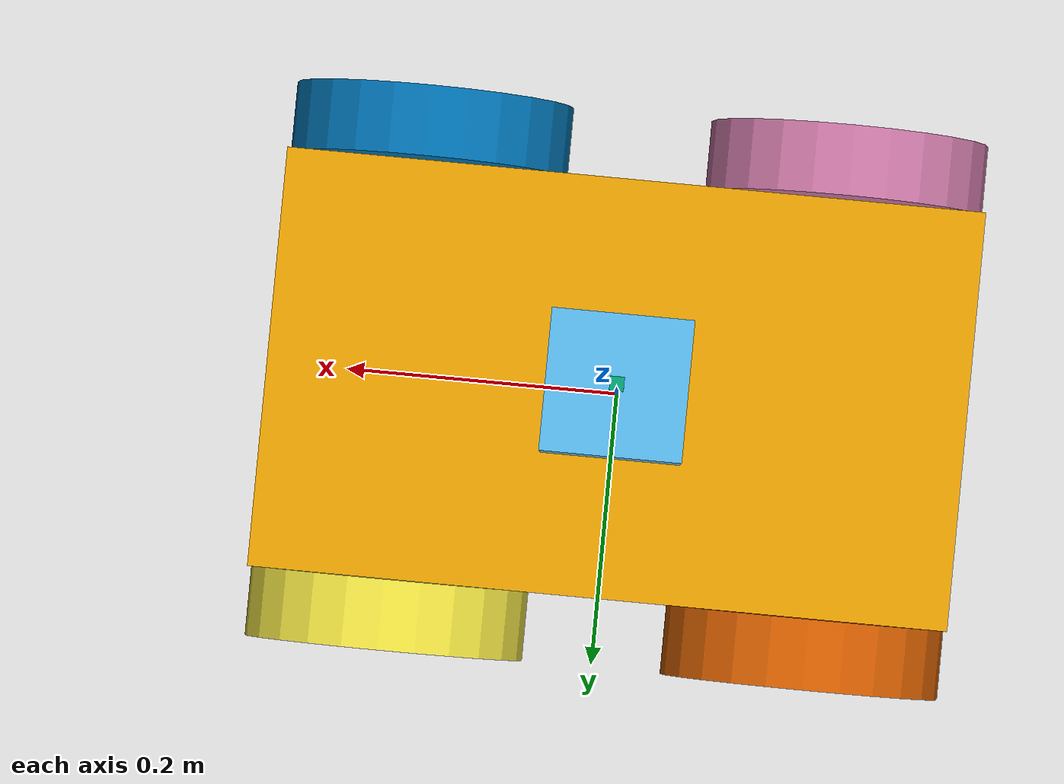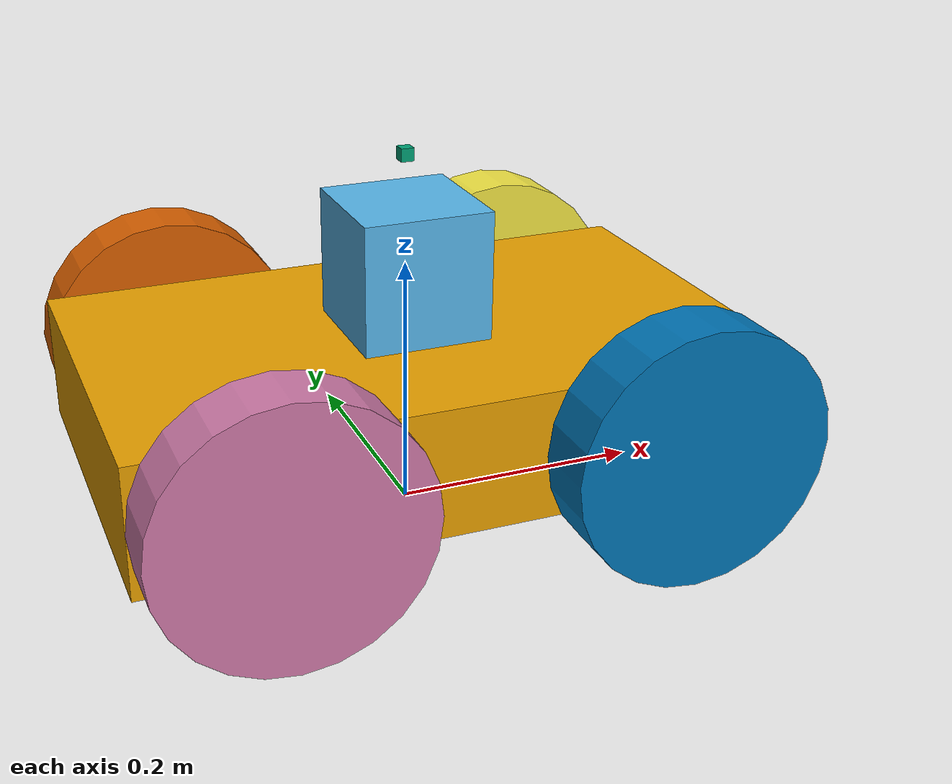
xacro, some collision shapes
<?xml version="1.0"?>
<robot xmlns:xacro="http://www.ros.org/wiki/xacro" name="simple_skid_steer">

  <!--central box properties-->
  <xacro:property name="depthBox" value=".5" />
  <xacro:property name="widthBox" value=".3" />
  <xacro:property name="heightBox" value=".1" />
  <xacro:property name="densityBox" value="100" />
  <!--post to elevate sensor properties-->
  <xacro:property name="depthPost" value=".1" />
  <xacro:property name="widthPost" value=".1" />
  <xacro:property name="heightPost" value=".1" />
  <xacro:property name="densityPost" value="100" />
  <!--wheel properties-->
  <xacro:property name="radiusCylinder" value=".1" />
  <xacro:property name="lengthCylinder" value=".05" />
  <xacro:property name="densityCylinder" value="100" />

  <!--box body-->
  <link name="base_link">
    <visual>
      <geometry>
        <box size="${depthBox} ${widthBox} ${heightBox}"/>
      </geometry>
      <origin rpy="0 0 0" xyz="0 0 ${heightBox}"/>
    </visual>

    <collision>
      <geometry>
        <box size="${depthBox} ${widthBox} ${heightBox}"/>
      </geometry>
      <origin rpy="0 0 0" xyz="0 0 ${heightBox}"/>
    </collision>

    <inertial>
      <mass value="${depthBox*widthBox*heightBox*densityBox}"/>
      <inertia
        ixx="${(depthBox*widthBox*heightBox*densityBox)/12*((heightBox*heightBox)+(depthBox*depthBox))}"
        ixy="0"
        ixz="0"
        iyy="${(depthBox*widthBox*heightBox*densityBox)/12*((widthBox*widthBox)+(depthBox*depthBox))}"
        iyz="0"
        izz="${(depthBox*widthBox*heightBox*densityBox)/12*((widthBox*widthBox)+(heightBox*heightBox))}"/>
    </inertial>
  </link>

  <!--Post to elevate sensor-->
    <link name="post">
      <visual>
        <geometry>
          <box size="${depthPost} ${widthPost} ${heightPost}"/>
        </geometry>
        <origin rpy="0 0 0" xyz="0 0 0"/>
      </visual>

      <collision>
        <geometry>
          <box size="${depthPost} ${widthPost} ${heightPost}"/>
        </geometry>
        <origin rpy="0 0 0" xyz="0 0 ${heightPost}"/>
      </collision>

      <inertial>
        <mass value="${depthPost*widthPost*heightPost*densityPost}"/>
        <inertia
          ixx="${(depthPost*widthPost*heightPost*densityPost)/12*((heightPost*heightPost)+(depthPost*depthPost))}"
          ixy="0"
          ixz="0"
          iyy="${(depthPost*widthPost*heightPost*densityPost)/12*((widthPost*widthPost)+(depthPost*depthPost))}"
          iyz="0"
          izz="${(depthPost*widthPost*heightPost*densityPost)/12*((widthPost*widthPost)+(heightPost*heightPost))}"/>
      </inertial>
    </link>

    <!-- Hokuyo Laser -->
      <link name="hokuyo_link">
        <collision>
          <origin xyz="0 0 0" rpy="0 0 0"/>
          <geometry>
        <box size="0.01 0.01 0.01"/>
          </geometry>
        </collision>

        <visual>
          <origin xyz="0 0 0" rpy="0 0 0"/>
          <geometry>
            <mesh filename="package://simple_drive_practice/urdf/meshes/hokuyo.dae"/>
          </geometry>
        </visual>

        <inertial>
          <mass value="1e-5" />
          <origin xyz="0 0 0" rpy="0 0 0"/>
          <inertia ixx="1e-6" ixy="0" ixz="0" iyy="1e-6" iyz="0" izz="1e-6" />
        </inertial>
      </link>

<gazebo reference="hokuyo_link">
    <sensor type="ray" name="head_hokuyo_sensor">
      <pose>0 0 0 0 0 0</pose>
      <visualize>false</visualize>
      <update_rate>40</update_rate>
      <ray>
        <scan>
          <horizontal>
            <samples>720</samples>
            <resolution>1</resolution>
            <min_angle>-1.570796</min_angle>
            <max_angle>1.570796</max_angle>
          </horizontal>
        </scan>
        <range>
          <min>0.10</min>
          <max>30.0</max>
          <resolution>0.01</resolution>
        </range>
        <noise>
          <type>gaussian</type>
          <mean>0.0</mean>
          <stddev>0.01</stddev>
        </noise>
      </ray>
      <plugin name="gazebo_ros_head_hokuyo_controller" filename="libgazebo_ros_laser.so">
        <topicName>/simple_skid_steer/laser/scan</topicName>
        <frameName>base_link</frameName>
      </plugin>
    </sensor>
  </gazebo>

  <!--algorithm for creating wheels and joints-->
  <xacro:macro name="wheel" params="prefix x y">
      <link name="${prefix}Wheel">
        <visual>
          <geometry>
          	<cylinder length="${lengthCylinder}" radius="${radiusCylinder}"/>
          </geometry>
          <origin rpy="1.5707 0 0" xyz="0 0 0"/>
        </visual>

        <collision>
          <geometry>
            <cylinder length="${lengthCylinder}" radius="${radiusCylinder}"/>
          </geometry>
          <origin rpy="1.5707 0 0" xyz="0 0 0"/>
        </collision>

     <inertial>
          <mass value="${(radiusCylinder*radiusCylinder)*3.1415}"/>
          <inertia
            ixx="${(((radiusCylinder*radiusCylinder)*3.1415)/12)*(3*(radiusCylinder*radiusCylinder)+(lengthCylinder*lengthCylinder))}"
            ixy="0"
            ixz="0"
            iyy="${(((radiusCylinder*radiusCylinder)*3.1415)/12)*(3*(radiusCylinder*radiusCylinder)+(lengthCylinder*lengthCylinder))}"
            iyz="0"
            izz="${(((radiusCylinder*radiusCylinder)*3.1415)/2)*(radiusCylinder*radiusCylinder)}"/>
        </inertial>
      </link>

      <joint name="${prefix}WheelJoint" type="continuous">
        <parent link="base_link"/>
        <child link="${prefix}Wheel"/>
        <axis xyz="0 ${((widthBox/2)+(lengthCylinder/2))} 0"/>
        <origin xyz="${((depthBox/2)-radiusCylinder)*x} ${((widthBox/2)+(lengthCylinder/2))*y} ${heightBox}"/>
      </joint>
  </xacro:macro>
  <!--Skid Steering Drive-->
  <gazebo>
    <plugin name="skid_steer_drive_controller" filename="libgazebo_ros_skid_steer_drive.so">
      <updateRate>100.0</updateRate>
      <robotNamespace>/simple_skid_steer</robotNamespace>
      <leftFrontJoint>leftFrontWheelJoint</leftFrontJoint>
      <rightFrontJoint>rightFrontWheelJoint</rightFrontJoint>
      <leftRearJoint>leftBackWheelJoint</leftRearJoint>
      <rightRearJoint>rightBackWheelJoint</rightRearJoint>
      <wheelSeparation>${(widthBox/2) + (lengthCylinder/2)}</wheelSeparation>
      <wheelDiameter>${radiusCylinder*2}</wheelDiameter>
      <robotBaseFrame>base_link</robotBaseFrame>
      <torque>20</torque>
      <topicName>cmd_vel</topicName>
      <broadcastTF>true</broadcastTF>
    </plugin>
  </gazebo>
  <!--Create wheels and joint to the main body using above algorithm-->
  <xacro:wheel prefix="rightFront" x="1" y="1"/>
  <xacro:wheel prefix="leftFront" x="1" y="-1"/>
  <xacro:wheel prefix="rightBack" x="-1" y="1"/>
  <xacro:wheel prefix="leftBack" x="-1" y="-1"/>

  <joint name="postToBody" type="fixed">
    <parent link="base_link"/>
    <child link="post"/>
    <origin xyz="0 0 ${(heightBox/2)+heightBox+(heightPost/2)}"/>
  </joint>

  <joint name="sensorToBody" type="fixed">
     <axis xyz="0 1 0"  rpy="0 0 0"/>
    <parent link="post"/>
    <child link="hokuyo_link"/>
    <origin xyz="0 0 .085"/>
  </joint>

</robot>
